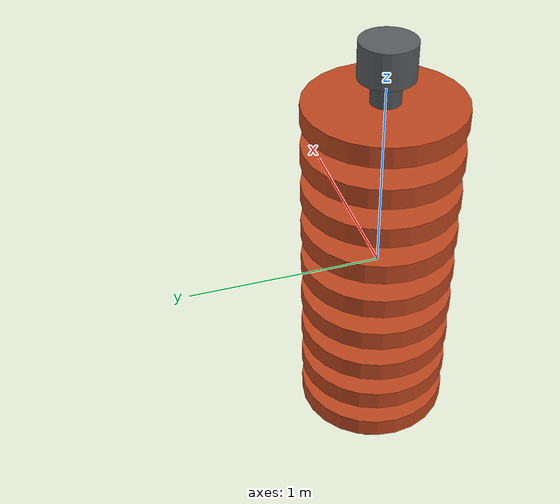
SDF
<?xml version="1.0"?>
<sdf version="1.6">
  <model name="insulator">
    <static>false</static>
    <link name="body">
      <gravity>false</gravity>
      <kinematic>true</kinematic>
      <inertial>
        <mass>8.0</mass>
        <inertia>
          <ixx>1.0</ixx><iyy>1.0</iyy><izz>1.0</izz>
        </inertia>
      </inertial>
      <collision name="shaft_collision">
        <geometry><cylinder><radius>0.09</radius><length>2.2</length></cylinder></geometry>
      </collision>
      <visual name="shaft">
        <geometry><cylinder><radius>0.075</radius><length>2.2</length></cylinder></geometry>
        <material><ambient>0.18 0.20 0.21 1</ambient><diffuse>0.32 0.34 0.35 1</diffuse><specular>0.7 0.7 0.7 1</specular></material>
      </visual>
      <visual name="cap_top">
        <pose>0 0 1.15 0 0 0</pose>
        <geometry><cylinder><radius>0.14</radius><length>0.18</length></cylinder></geometry>
        <material><ambient>0.15 0.16 0.17 1</ambient><diffuse>0.35 0.36 0.37 1</diffuse></material>
      </visual>
      <visual name="cap_bottom">
        <pose>0 0 -1.15 0 0 0</pose>
        <geometry><cylinder><radius>0.14</radius><length>0.18</length></cylinder></geometry>
        <material><ambient>0.15 0.16 0.17 1</ambient><diffuse>0.35 0.36 0.37 1</diffuse></material>
      </visual>
      <visual name="disc_0"><pose>0 0 -0.88 0 0 0</pose><geometry><cylinder><radius>0.40</radius><length>0.105</length></cylinder></geometry><material><ambient>0.32 0.10 0.055 1</ambient><diffuse>0.75 0.28 0.12 1</diffuse><specular>0.45 0.40 0.35 1</specular></material></visual>
      <visual name="disc_1"><pose>0 0 -0.66 0 0 0</pose><geometry><cylinder><radius>0.40</radius><length>0.105</length></cylinder></geometry><material><ambient>0.32 0.10 0.055 1</ambient><diffuse>0.75 0.28 0.12 1</diffuse><specular>0.45 0.40 0.35 1</specular></material></visual>
      <visual name="disc_2"><pose>0 0 -0.44 0 0 0</pose><geometry><cylinder><radius>0.40</radius><length>0.105</length></cylinder></geometry><material><ambient>0.32 0.10 0.055 1</ambient><diffuse>0.75 0.28 0.12 1</diffuse><specular>0.45 0.40 0.35 1</specular></material></visual>
      <visual name="disc_3"><pose>0 0 -0.22 0 0 0</pose><geometry><cylinder><radius>0.40</radius><length>0.105</length></cylinder></geometry><material><ambient>0.32 0.10 0.055 1</ambient><diffuse>0.75 0.28 0.12 1</diffuse><specular>0.45 0.40 0.35 1</specular></material></visual>
      <visual name="disc_4"><pose>0 0 0.00 0 0 0</pose><geometry><cylinder><radius>0.40</radius><length>0.105</length></cylinder></geometry><material><ambient>0.32 0.10 0.055 1</ambient><diffuse>0.75 0.28 0.12 1</diffuse><specular>0.45 0.40 0.35 1</specular></material></visual>
      <visual name="disc_5"><pose>0 0 0.22 0 0 0</pose><geometry><cylinder><radius>0.40</radius><length>0.105</length></cylinder></geometry><material><ambient>0.32 0.10 0.055 1</ambient><diffuse>0.75 0.28 0.12 1</diffuse><specular>0.45 0.40 0.35 1</specular></material></visual>
      <visual name="disc_6"><pose>0 0 0.44 0 0 0</pose><geometry><cylinder><radius>0.40</radius><length>0.105</length></cylinder></geometry><material><ambient>0.32 0.10 0.055 1</ambient><diffuse>0.75 0.28 0.12 1</diffuse><specular>0.45 0.40 0.35 1</specular></material></visual>
      <visual name="disc_7"><pose>0 0 0.66 0 0 0</pose><geometry><cylinder><radius>0.40</radius><length>0.105</length></cylinder></geometry><material><ambient>0.32 0.10 0.055 1</ambient><diffuse>0.75 0.28 0.12 1</diffuse><specular>0.45 0.40 0.35 1</specular></material></visual>
      <visual name="disc_8"><pose>0 0 0.88 0 0 0</pose><geometry><cylinder><radius>0.40</radius><length>0.105</length></cylinder></geometry><material><ambient>0.32 0.10 0.055 1</ambient><diffuse>0.75 0.28 0.12 1</diffuse><specular>0.45 0.40 0.35 1</specular></material></visual>
    </link>
  </model>
</sdf>
